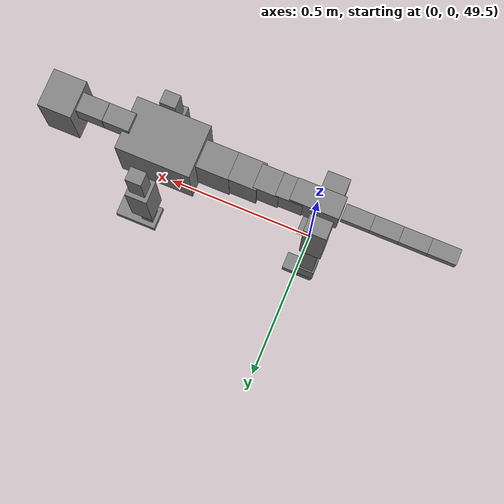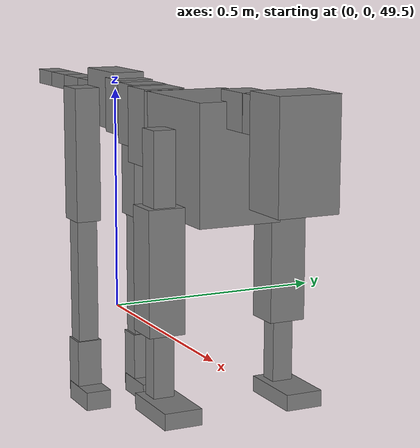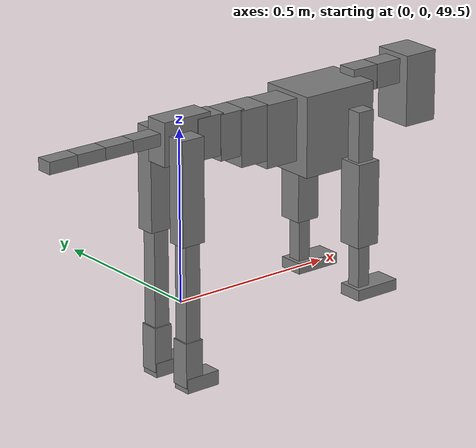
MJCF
<mujoco model="dog">

    <default>
        <joint armature="0.02" stiffness="1" damping="0.2" limited="true"/>
        <geom condim="3" friction="1 0.05 0.05" margin="0.01"/>
        <motor ctrllimited="true" ctrlrange="-1.0 1.0" forcelimited="true" gear="50"/>
    </default>

    <compiler inertiafromgeom="true" angle="radian"/>

    <option timestep="0.016" iterations="50" tolerance="1e-10" solver="Newton" jacobian="dense" cone="pyramidal"/>

    <size nconmax="20000" njmax="60000" nstack="5000000"/>
    <visual>
        <map force="0.1" zfar="30"/>
        <rgba haze="0.15 0.25 0.35 1"/>
        <quality shadowsize="2048"/>
        <global offwidth="800" offheight="800"/>
    </visual>

    <asset>
        <texture type="skybox" builtin="gradient" rgb1="0.3 0.5 0.7" rgb2="0 0 0" width="512" height="512"/>
        <texture name="texplane" type="2d" builtin="checker" rgb1=".2 .3 .4" rgb2=".1 0.15 0.2" width="512" height="512"
                 mark="cross" markrgb=".8 .8 .8"/>
        <texture name="texgeom" type="cube" builtin="flat" mark="cross" width="127" height="1278" rgb1="0.8 0.6 0.4"
                 rgb2="0.8 0.6 0.4" markrgb="1 1 1" random="0.01"/>

        <material name="matplane" reflectance="0.3" texture="texplane" texrepeat="1 1" texuniform="true"/>
        <material name="matgeom" texture="texgeom" texuniform="true" rgba="0.8 0.6 .4 1"/>
    </asset>

    <worldbody>
        <geom name="floor" pos="0 0 0" size="0 0 .25" type="plane" material="matplane" condim="3"/>

        <light directional="false" diffuse=".2 .2 .2" specular="0 0 0" pos="0 0 5" dir="0 0 -1" castshadow="false"/>
        <light mode="targetbodycom" target="torso" directional="false" diffuse=".8 .8 .8" specular="0.3 0.3 0.3"
               pos="0 0 4.0" dir="0 0 -1"/>

        <body name="root" pos="0 0 50">
            <freejoint name="root_1"/>
            <geom type="box" pos="0 0 -0.02" size="0.0774  0.0358  0.063" density="2030"/>

            <body name="spine1" pos="0.054 0 0">
                <joint name="spine1_y" axis="0 1 0" range="0 0.7" limited="true"/>
                <geom type="box" pos="0.02375 0 -0.03" size="0.04375  0.0375  0.05985" density="2030"/>

                <body name="spine2" pos="0.0612 0 0">
                    <joint name="spine2_y" axis="0 1 0" range="-0.15 0.15" limited="true"/>
                    <geom type="box" pos="0.03555  0  -0.04" size="0.04055  0.039  0.06615" density="2030"/>

                    <body name="spine3" pos="0.0730 0 0">
                        <joint name="spine3_y" axis="0 1 0" range="-0.15 0.15" limited="true"/>
                        <geom type="box" pos="0.03555  0  -0.057" size="0.04555  0.0445  0.081" density="2030"/>

                        <body name="spine4" pos="0.0780 0 0">
                            <joint name="spine4_y" axis="0 1 0" range="-0.15 0.15" limited="true"/>
                            <geom type="box" pos="0.05265  0  -0.07" size="0.05265  0.045  0.09135" density="2030"/>

                            <body name="torso" pos="0.1082 0 0">
                                <joint name="torso_y" axis="0 1 0" range="-0.15 0.15" limited="true"/>
                                <geom type="box" pos="0.11925  0  -0.085" size="0.11925  0.085  0.11745"
                                      density="2030"/>

                                <body name="neck1" pos="0.2160  0   0.0180">
                                    <joint name="neck1_y" axis="0 1 0" range="-1.2  -1" limited="true"/>
                                    <geom type="box" pos="0.0423  0  0" size="0.0423  0.03  0.036" density="2325"/>

                                    <body name="neck2" pos="0.0853  0  0">
                                        <joint name="neck2_y" axis="0 1 0" range="0.1  0" limited="true"/>
                                        <geom type="box" pos="0.0423  0  0" size="0.0423  0.03  0.036" density="2325"/>

                                        <body name="head" pos="0.0853  0  0">
                                            <joint name="head_y" axis="0 1 0" range="-0.3  -0.2" limited="true"/>
                                            <geom type="box" pos="0.0531  0  -0.055" size="0.0531  0.06  0.1044"
                                                  density="4030"/>

                                        </body>
                                    </body>
                                </body>

                                <body name="front_shoulder" pos="0.156  0   -0.0480">
                                    <joint name="front_shoulder_y" axis="0 1 0" range="-1 1.5" limited="true"/>
                                    <geom type="box" pos="0 0.13 -0.0601" size="0.0261  0.0223  0.0867" density="1158"/>
                                    <geom type="box" pos="0 -0.13 -0.0601" size="0.0261  0.0223  0.0867"
                                          density="1158"/>

                                    <body name="front_elbow" pos="0  0  -0.1202">
                                        <joint name="front_elbow_y" axis="0 1 0" range="-2 0" limited="true"/>
                                        <geom type="box" pos="0 0.13 -0.1233" size="0.0366  0.0374  0.1233"
                                              density="1081"/>
                                        <geom type="box" pos="0 -0.13 -0.1233" size="0.0366  0.0374  0.1233"
                                              density="1081"/>

                                        <body name="front_wrist" pos="0  0  -0.2467">
                                            <joint name="front_wrist_y" axis="0 1 0" range="-0.2 0" limited="true"/>
                                            <geom type="box" pos="0 0.13 -0.0706" size="0.0193  0.0214  0.0838"
                                                  density="1664"/>
                                            <geom type="box" pos="0 -0.13 -0.0706" size="0.0193  0.0214  0.0838"
                                                  density="1664"/>

                                            <body name="front_finger_end" pos="0  0  -0.1412">
                                                <joint name="front_finger_y" axis="0 1 0" range="-0.4 1"
                                                       limited="true"/>
                                                <geom type="box" pos="0.0383  0.13  -0.0012"
                                                      size="0.0702  0.0383  0.0162" density="1515"/>
                                                <geom type="box" pos="0.0383  -0.13  -0.0012"
                                                      size="0.0702  0.0383  0.0162" density="1515"/>

                                            </body>

                                        </body>
                                    </body>
                                </body>

                            </body>
                        </body>
                    </body>
                </body>
            </body>

            <body name="back_hip" pos="-0.03 0 -0.018">
                <joint name="back_hip_y" axis="0 1 0" range="-1.5 0.3" limited="true"/>
                <geom type="box" pos="0 0.07 -0.1282" size="0.0365  0.0286  0.1510" density="1154"/>
                <geom type="box" pos="0 -0.07 -0.1282" size="0.0365  0.0286  0.1510" density="1154"/>

                <body name="back_knee" pos="0  0  -0.2564">
                    <joint name="back_knee_y" axis="0 1 0" range="0 2.8" limited="true"/>
                    <geom type="box" pos="0 0.07 -0.1577" size="0.0239  0.0235  0.1733" density="1227"/>
                    <geom type="box" pos="0 -0.07 -0.1577" size="0.0239  0.0235  0.1733" density="1227"/>

                    <body name="back_ankle" pos="0  0  -0.3155">
                        <joint name="back_ankle_y" axis="0 1 0" range="-2.2 0" limited="true"/>
                        <geom type="box" pos="0 0.07 -0.0548" size="0.0283  0.0283  0.0661" density="1284"/>
                        <geom type="box" pos="0 -0.07 -0.0548" size="0.0283  0.0283  0.0661" density="1284"/>

                        <body name="back_toe_end" pos="0  0  -0.1097">
                            <joint name="back_toe_y" axis="0 1 0" range="-0.4 1" limited="true"/>
                            <geom type="box" pos="0.0291  0.07  -0.0061" size="0.0533  0.0291  0.0211" density="1515"/>
                            <geom type="box" pos="0.0291  -0.07  -0.0061" size="0.0533  0.0291  0.0211" density="1515"/>

                        </body>
                    </body>
                </body>
            </body>

            <body name="tail1" pos="-0.074 0 -0.006">
                <joint name="tail1_y" axis="0 1 0" range="-0.2 0.2" limited="true"/>
                <geom type="box" pos="-0.0536  0  0" size="0.045  0.025  0.0175" density="1587"/>

                <body name="tail2" pos="-0.09 0 0">
                    <joint name="tail2_y" axis="0 1 0" range="-0.2 0.2" limited="true"/>
                    <geom type="box" pos="-0.0536  0  0" size="0.045  0.025  0.0175" density="1587"/>

                    <body name="tail3" pos="-0.09 0 0">
                        <joint name="tail3_y" axis="0 1 0" range="-0.2 0.2" limited="true"/>
                        <geom type="box" pos="-0.0536  0  0" size="0.045  0.025  0.0175" density="1587"/>

                        <body name="tail4" pos="-0.09 0 0">
                            <joint name="tail4_y" axis="0 1 0" range="-0.2 0.2" limited="true"/>
                            <geom type="box" pos="-0.0536  0  0" size="0.045  0.025  0.0175" density="1587"/>

                        </body>
                    </body>
                </body>
            </body>
        </body>
    </worldbody>

    <actuator>
        <motor joint="spine1_y" forcerange="-150 150     "/>
        <motor joint="spine2_y" forcerange="-150 150     "/>
        <motor joint="spine3_y" forcerange="-150 150     "/>
        <motor joint="spine4_y" forcerange="-150 150     "/>
        <motor joint="torso_y" forcerange="-150 150     "/>
        <motor joint="neck1_y" forcerange="-100 100       "/>
        <motor joint="neck2_y" forcerange="-100 100       "/>
        <motor joint="head_y" forcerange="-150 150       "/>
        <motor joint="front_shoulder_y" forcerange="-122.80 126.08"/>
        <motor joint="front_elbow_y" forcerange="-198.62 173.31"/>
        <motor joint="front_wrist_y" forcerange="-104.89 66.56"/>
        <motor joint="front_finger_y" forcerange="-81.62 82.74"/>
        <motor joint="back_hip_y" forcerange="-264.54 316.93"/>
        <motor joint="back_knee_y" forcerange="-335.12 206.84"/>
        <motor joint="back_angle_y" forcerange="-213.62 138.78"/>
        <motor joint="back_toe_y" forcerange="-100.84 51.57"/>
        <motor joint="tail1_y" forcerange="-50 50     "/>
        <motor joint="tail2_y" forcerange="-50 50     "/>
        <motor joint="tail3_y" forcerange="-50 50     "/>
        <motor joint="tail4_y" forcerange="-50 50     "/>
    </actuator>
</mujoco>
